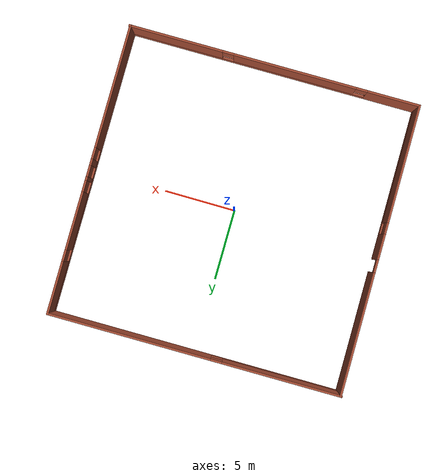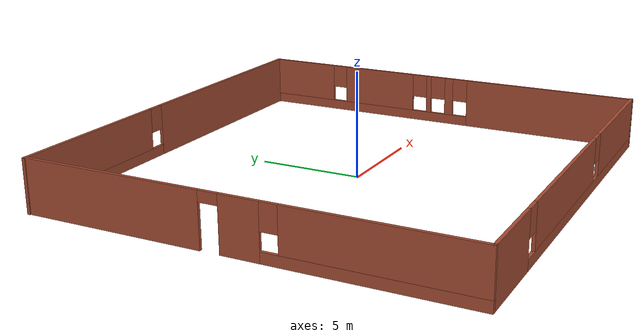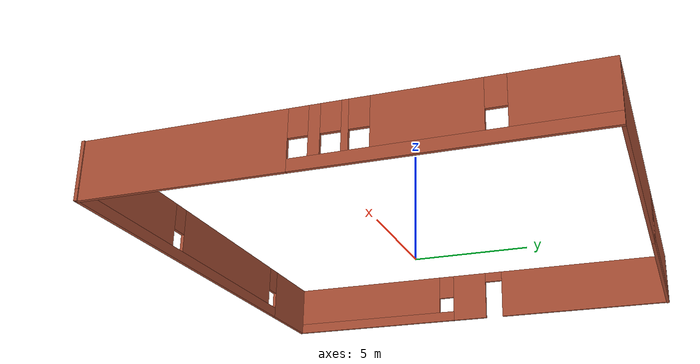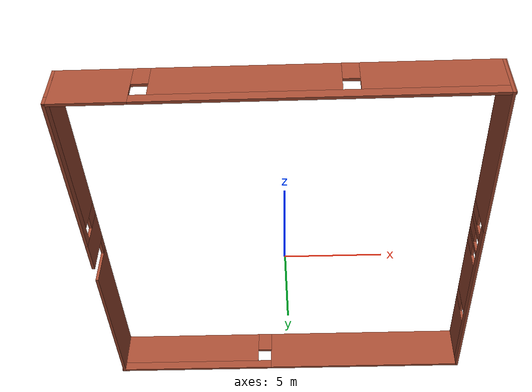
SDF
<?xml version='1.0'?>
<sdf version='1.7'>
  <model name='Walls'>
    <pose>-0.027118 0.015393 0 0 -0 0</pose>
    <link name='Wall_43'>
      <pose>-10.226 0 0 0 -0 -1.57109</pose>
      <visual name='Wall_43_Visual_0'>
        <pose>-5.91084 0 1.25 0 -0 0</pose>
        <geometry>
          <box>
            <size>8.66644 0.15 2.5</size>
          </box>
        </geometry>
        <material>
          <script>
            <uri>file://media/materials/scripts/gazebo.material</uri>
            <name>Gazebo/Bricks</name>
          </script>
          <ambient>0.388235 0.270588 0.172549 1</ambient>
        </material>
        <meta>
          <layer>0</layer>
        </meta>
      </visual>
      <collision name='Wall_43_Collision_0'>
        <geometry>
          <box>
            <size>8.66644 0.15 2.5</size>
          </box>
        </geometry>
        <pose>-5.91084 0 1.25 0 -0 0</pose>
      </collision>
      <visual name='Wall_43_Visual_1'>
        <pose>0.223322 0 1.25 0 -0 0</pose>
        <geometry>
          <box>
            <size>1.80188 0.15 2.5</size>
          </box>
        </geometry>
        <material>
          <script>
            <uri>file://media/materials/scripts/gazebo.material</uri>
            <name>Gazebo/Bricks</name>
          </script>
          <ambient>0.388235 0.270588 0.172549 1</ambient>
        </material>
        <meta>
          <layer>0</layer>
        </meta>
      </visual>
      <collision name='Wall_43_Collision_1'>
        <geometry>
          <box>
            <size>1.80188 0.15 2.5</size>
          </box>
        </geometry>
        <pose>0.223322 0 1.25 0 -0 0</pose>
      </collision>
      <visual name='Wall_43_Visual_2'>
        <pose>5.68416 0 0.25 0 -0 0</pose>
        <geometry>
          <box>
            <size>9.1198 0.15 0.5</size>
          </box>
        </geometry>
        <material>
          <script>
            <uri>file://media/materials/scripts/gazebo.material</uri>
            <name>Gazebo/Bricks</name>
          </script>
          <ambient>0.388235 0.270588 0.172549 1</ambient>
        </material>
        <meta>
          <layer>0</layer>
        </meta>
      </visual>
      <collision name='Wall_43_Collision_2'>
        <geometry>
          <box>
            <size>9.1198 0.15 0.5</size>
          </box>
        </geometry>
        <pose>5.68416 0 0.25 0 -0 0</pose>
      </collision>
      <visual name='Wall_43_Visual_3'>
        <pose>6.08416 0 1.5 0 -0 0</pose>
        <geometry>
          <box>
            <size>8.3198 0.15 2</size>
          </box>
        </geometry>
        <material>
          <script>
            <uri>file://media/materials/scripts/gazebo.material</uri>
            <name>Gazebo/Bricks</name>
          </script>
          <ambient>0.388235 0.270588 0.172549 1</ambient>
        </material>
        <meta>
          <layer>0</layer>
        </meta>
      </visual>
      <collision name='Wall_43_Collision_3'>
        <geometry>
          <box>
            <size>8.3198 0.15 2</size>
          </box>
        </geometry>
        <pose>6.08416 0 1.5 0 -0 0</pose>
      </collision>
      <visual name='Wall_43_Visual_4'>
        <pose>1.52426 0 1.9 0 -0 0</pose>
        <geometry>
          <box>
            <size>0.8 0.15 1.2</size>
          </box>
        </geometry>
        <material>
          <script>
            <uri>file://media/materials/scripts/gazebo.material</uri>
            <name>Gazebo/Bricks</name>
          </script>
          <ambient>0.388235 0.270588 0.172549 1</ambient>
        </material>
        <meta>
          <layer>0</layer>
        </meta>
      </visual>
      <collision name='Wall_43_Collision_4'>
        <geometry>
          <box>
            <size>0.8 0.15 1.2</size>
          </box>
        </geometry>
        <pose>1.52426 0 1.9 0 -0 0</pose>
      </collision>
      <visual name='Wall_43_Visual_5'>
        <pose>-1.12762 0 2.25 0 -0 0</pose>
        <geometry>
          <box>
            <size>0.9 0.15 0.5</size>
          </box>
        </geometry>
        <material>
          <script>
            <uri>file://media/materials/scripts/gazebo.material</uri>
            <name>Gazebo/Bricks</name>
          </script>
          <ambient>0.388235 0.270588 0.172549 1</ambient>
        </material>
        <meta>
          <layer>0</layer>
        </meta>
      </visual>
      <collision name='Wall_43_Collision_5'>
        <geometry>
          <box>
            <size>0.9 0.15 0.5</size>
          </box>
        </geometry>
        <pose>-1.12762 0 2.25 0 -0 0</pose>
      </collision>
    </link>
    <link name='Wall_44'>
      <pose>0.04349 -10.1688 0 0 -0 0</pose>
      <visual name='Wall_44_Visual_0'>
        <pose>-8.4495 0 1.25 0 -0 0</pose>
        <geometry>
          <box>
            <size>3.70301 0.15 2.5</size>
          </box>
        </geometry>
        <material>
          <script>
            <uri>file://media/materials/scripts/gazebo.material</uri>
            <name>Gazebo/Bricks</name>
          </script>
          <ambient>0.388235 0.270588 0.172549 1</ambient>
        </material>
        <meta>
          <layer>0</layer>
        </meta>
      </visual>
      <collision name='Wall_44_Collision_0'>
        <geometry>
          <box>
            <size>3.70301 0.15 2.5</size>
          </box>
        </geometry>
        <pose>-8.4495 0 1.25 0 -0 0</pose>
      </collision>
      <visual name='Wall_44_Visual_1'>
        <pose>1.8515 0 0.25 0 -0 0</pose>
        <geometry>
          <box>
            <size>16.899 0.15 0.5</size>
          </box>
        </geometry>
        <material>
          <script>
            <uri>file://media/materials/scripts/gazebo.material</uri>
            <name>Gazebo/Bricks</name>
          </script>
          <ambient>0.388235 0.270588 0.172549 1</ambient>
        </material>
        <meta>
          <layer>0</layer>
        </meta>
      </visual>
      <collision name='Wall_44_Collision_1'>
        <geometry>
          <box>
            <size>16.899 0.15 0.5</size>
          </box>
        </geometry>
        <pose>1.8515 0 0.25 0 -0 0</pose>
      </collision>
      <visual name='Wall_44_Visual_2'>
        <pose>-1.47582 0 1.5 0 -0 0</pose>
        <geometry>
          <box>
            <size>8.64435 0.15 2</size>
          </box>
        </geometry>
        <material>
          <script>
            <uri>file://media/materials/scripts/gazebo.material</uri>
            <name>Gazebo/Bricks</name>
          </script>
          <ambient>0.388235 0.270588 0.172549 1</ambient>
        </material>
        <meta>
          <layer>0</layer>
        </meta>
      </visual>
      <collision name='Wall_44_Collision_2'>
        <geometry>
          <box>
            <size>8.64435 0.15 2</size>
          </box>
        </geometry>
        <pose>-1.47582 0 1.5 0 -0 0</pose>
      </collision>
      <visual name='Wall_44_Visual_3'>
        <pose>6.97368 0 1.5 0 -0 0</pose>
        <geometry>
          <box>
            <size>6.65464 0.15 2</size>
          </box>
        </geometry>
        <material>
          <script>
            <uri>file://media/materials/scripts/gazebo.material</uri>
            <name>Gazebo/Bricks</name>
          </script>
          <ambient>0.388235 0.270588 0.172549 1</ambient>
        </material>
        <meta>
          <layer>0</layer>
        </meta>
      </visual>
      <collision name='Wall_44_Collision_3'>
        <geometry>
          <box>
            <size>6.65464 0.15 2</size>
          </box>
        </geometry>
        <pose>6.97368 0 1.5 0 -0 0</pose>
      </collision>
      <visual name='Wall_44_Visual_4'>
        <pose>-6.198 0 1.9 0 -0 0</pose>
        <geometry>
          <box>
            <size>0.8 0.15 1.2</size>
          </box>
        </geometry>
        <material>
          <script>
            <uri>file://media/materials/scripts/gazebo.material</uri>
            <name>Gazebo/Bricks</name>
          </script>
          <ambient>0.388235 0.270588 0.172549 1</ambient>
        </material>
        <meta>
          <layer>0</layer>
        </meta>
      </visual>
      <collision name='Wall_44_Collision_4'>
        <geometry>
          <box>
            <size>0.8 0.15 1.2</size>
          </box>
        </geometry>
        <pose>-6.198 0 1.9 0 -0 0</pose>
      </collision>
      <visual name='Wall_44_Visual_5'>
        <pose>3.24636 0 1.9 0 -0 0</pose>
        <geometry>
          <box>
            <size>0.8 0.15 1.2</size>
          </box>
        </geometry>
        <material>
          <script>
            <uri>file://media/materials/scripts/gazebo.material</uri>
            <name>Gazebo/Bricks</name>
          </script>
          <ambient>0.388235 0.270588 0.172549 1</ambient>
        </material>
        <meta>
          <layer>0</layer>
        </meta>
      </visual>
      <collision name='Wall_44_Collision_5'>
        <geometry>
          <box>
            <size>0.8 0.15 1.2</size>
          </box>
        </geometry>
        <pose>3.24636 0 1.9 0 -0 0</pose>
      </collision>
    </link>
    <link name='Wall_45'>
      <pose>10.223 0 0 0 -0 1.5708</pose>
      <visual name='Wall_45_Visual_0'>
        <pose>-5.87482 0 1.25 0 -0 0</pose>
        <geometry>
          <box>
            <size>8.73851 0.15 2.5</size>
          </box>
        </geometry>
        <material>
          <script>
            <uri>file://media/materials/scripts/gazebo.material</uri>
            <name>Gazebo/Bricks</name>
          </script>
          <ambient>0.388235 0.270588 0.172549 1</ambient>
        </material>
        <meta>
          <layer>0</layer>
        </meta>
      </visual>
      <collision name='Wall_45_Collision_0'>
        <geometry>
          <box>
            <size>8.73851 0.15 2.5</size>
          </box>
        </geometry>
        <pose>-5.87482 0 1.25 0 -0 0</pose>
      </collision>
      <visual name='Wall_45_Visual_1'>
        <pose>4.36925 0 0.25 0 -0 0</pose>
        <geometry>
          <box>
            <size>11.7496 0.15 0.5</size>
          </box>
        </geometry>
        <material>
          <script>
            <uri>file://media/materials/scripts/gazebo.material</uri>
            <name>Gazebo/Bricks</name>
          </script>
          <ambient>0.388235 0.270588 0.172549 1</ambient>
        </material>
        <meta>
          <layer>0</layer>
        </meta>
      </visual>
      <collision name='Wall_45_Collision_1'>
        <geometry>
          <box>
            <size>11.7496 0.15 0.5</size>
          </box>
        </geometry>
        <pose>4.36925 0 0.25 0 -0 0</pose>
      </collision>
      <visual name='Wall_45_Visual_2'>
        <pose>-0.477493 0 1.5 0 -0 0</pose>
        <geometry>
          <box>
            <size>0.456146 0.15 2</size>
          </box>
        </geometry>
        <material>
          <script>
            <uri>file://media/materials/scripts/gazebo.material</uri>
            <name>Gazebo/Bricks</name>
          </script>
          <ambient>0.388235 0.270588 0.172549 1</ambient>
        </material>
        <meta>
          <layer>0</layer>
        </meta>
      </visual>
      <collision name='Wall_45_Collision_2'>
        <geometry>
          <box>
            <size>0.456146 0.15 2</size>
          </box>
        </geometry>
        <pose>-0.477493 0 1.5 0 -0 0</pose>
      </collision>
      <visual name='Wall_45_Visual_3'>
        <pose>0.685605 0 1.5 0 -0 0</pose>
        <geometry>
          <box>
            <size>0.27005 0.15 2</size>
          </box>
        </geometry>
        <material>
          <script>
            <uri>file://media/materials/scripts/gazebo.material</uri>
            <name>Gazebo/Bricks</name>
          </script>
          <ambient>0.388235 0.270588 0.172549 1</ambient>
        </material>
        <meta>
          <layer>0</layer>
        </meta>
      </visual>
      <collision name='Wall_45_Collision_3'>
        <geometry>
          <box>
            <size>0.27005 0.15 2</size>
          </box>
        </geometry>
        <pose>0.685605 0 1.5 0 -0 0</pose>
      </collision>
      <visual name='Wall_45_Visual_4'>
        <pose>3.66314 0 1.5 0 -0 0</pose>
        <geometry>
          <box>
            <size>4.08501 0.15 2</size>
          </box>
        </geometry>
        <material>
          <script>
            <uri>file://media/materials/scripts/gazebo.material</uri>
            <name>Gazebo/Bricks</name>
          </script>
          <ambient>0.388235 0.270588 0.172549 1</ambient>
        </material>
        <meta>
          <layer>0</layer>
        </meta>
      </visual>
      <collision name='Wall_45_Collision_4'>
        <geometry>
          <box>
            <size>4.08501 0.15 2</size>
          </box>
        </geometry>
        <pose>3.66314 0 1.5 0 -0 0</pose>
      </collision>
      <visual name='Wall_45_Visual_5'>
        <pose>8.37486 0 1.5 0 -0 0</pose>
        <geometry>
          <box>
            <size>3.73844 0.15 2</size>
          </box>
        </geometry>
        <material>
          <script>
            <uri>file://media/materials/scripts/gazebo.material</uri>
            <name>Gazebo/Bricks</name>
          </script>
          <ambient>0.388235 0.270588 0.172549 1</ambient>
        </material>
        <meta>
          <layer>0</layer>
        </meta>
      </visual>
      <collision name='Wall_45_Collision_5'>
        <geometry>
          <box>
            <size>3.73844 0.15 2</size>
          </box>
        </geometry>
        <pose>8.37486 0 1.5 0 -0 0</pose>
      </collision>
      <visual name='Wall_45_Visual_6'>
        <pose>-1.10557 0 1.9 0 -0 0</pose>
        <geometry>
          <box>
            <size>0.8 0.15 1.2</size>
          </box>
        </geometry>
        <material>
          <script>
            <uri>file://media/materials/scripts/gazebo.material</uri>
            <name>Gazebo/Bricks</name>
          </script>
          <ambient>0.388235 0.270588 0.172549 1</ambient>
        </material>
        <meta>
          <layer>0</layer>
        </meta>
      </visual>
      <collision name='Wall_45_Collision_6'>
        <geometry>
          <box>
            <size>0.8 0.15 1.2</size>
          </box>
        </geometry>
        <pose>-1.10557 0 1.9 0 -0 0</pose>
      </collision>
      <visual name='Wall_45_Visual_7'>
        <pose>0.15058 0 1.9 0 -0 0</pose>
        <geometry>
          <box>
            <size>0.8 0.15 1.2</size>
          </box>
        </geometry>
        <material>
          <script>
            <uri>file://media/materials/scripts/gazebo.material</uri>
            <name>Gazebo/Bricks</name>
          </script>
          <ambient>0.388235 0.270588 0.172549 1</ambient>
        </material>
        <meta>
          <layer>0</layer>
        </meta>
      </visual>
      <collision name='Wall_45_Collision_7'>
        <geometry>
          <box>
            <size>0.8 0.15 1.2</size>
          </box>
        </geometry>
        <pose>0.15058 0 1.9 0 -0 0</pose>
      </collision>
      <visual name='Wall_45_Visual_8'>
        <pose>1.22063 0 1.9 0 -0 0</pose>
        <geometry>
          <box>
            <size>0.8 0.15 1.2</size>
          </box>
        </geometry>
        <material>
          <script>
            <uri>file://media/materials/scripts/gazebo.material</uri>
            <name>Gazebo/Bricks</name>
          </script>
          <ambient>0.388235 0.270588 0.172549 1</ambient>
        </material>
        <meta>
          <layer>0</layer>
        </meta>
      </visual>
      <collision name='Wall_45_Collision_8'>
        <geometry>
          <box>
            <size>0.8 0.15 1.2</size>
          </box>
        </geometry>
        <pose>1.22063 0 1.9 0 -0 0</pose>
      </collision>
      <visual name='Wall_45_Visual_9'>
        <pose>6.10564 0 1.9 0 -0 0</pose>
        <geometry>
          <box>
            <size>0.8 0.15 1.2</size>
          </box>
        </geometry>
        <material>
          <script>
            <uri>file://media/materials/scripts/gazebo.material</uri>
            <name>Gazebo/Bricks</name>
          </script>
          <ambient>0.388235 0.270588 0.172549 1</ambient>
        </material>
        <meta>
          <layer>0</layer>
        </meta>
      </visual>
      <collision name='Wall_45_Collision_9'>
        <geometry>
          <box>
            <size>0.8 0.15 1.2</size>
          </box>
        </geometry>
        <pose>6.10564 0 1.9 0 -0 0</pose>
      </collision>
    </link>
    <link name='Wall_46'>
      <pose>-0.046523 10.1688 0 0 -0 3.14159</pose>
      <visual name='Wall_46_Visual_0'>
        <pose>-4.59793 0 1.25 0 -0 0</pose>
        <geometry>
          <box>
            <size>11.4001 0.15 2.5</size>
          </box>
        </geometry>
        <material>
          <script>
            <uri>file://media/materials/scripts/gazebo.material</uri>
            <name>Gazebo/Bricks</name>
          </script>
          <ambient>0.388235 0.270588 0.172549 1</ambient>
        </material>
        <meta>
          <layer>0</layer>
        </meta>
      </visual>
      <collision name='Wall_46_Collision_0'>
        <geometry>
          <box>
            <size>11.4001 0.15 2.5</size>
          </box>
        </geometry>
        <pose>-4.59793 0 1.25 0 -0 0</pose>
      </collision>
      <visual name='Wall_46_Visual_1'>
        <pose>5.70004 0 0.25 0 -0 0</pose>
        <geometry>
          <box>
            <size>9.19585 0.15 0.5</size>
          </box>
        </geometry>
        <material>
          <script>
            <uri>file://media/materials/scripts/gazebo.material</uri>
            <name>Gazebo/Bricks</name>
          </script>
          <ambient>0.388235 0.270588 0.172549 1</ambient>
        </material>
        <meta>
          <layer>0</layer>
        </meta>
      </visual>
      <collision name='Wall_46_Collision_1'>
        <geometry>
          <box>
            <size>9.19585 0.15 0.5</size>
          </box>
        </geometry>
        <pose>5.70004 0 0.25 0 -0 0</pose>
      </collision>
      <visual name='Wall_46_Visual_2'>
        <pose>6.10004 0 1.5 0 -0 0</pose>
        <geometry>
          <box>
            <size>8.39585 0.15 2</size>
          </box>
        </geometry>
        <material>
          <script>
            <uri>file://media/materials/scripts/gazebo.material</uri>
            <name>Gazebo/Bricks</name>
          </script>
          <ambient>0.388235 0.270588 0.172549 1</ambient>
        </material>
        <meta>
          <layer>0</layer>
        </meta>
      </visual>
      <collision name='Wall_46_Collision_2'>
        <geometry>
          <box>
            <size>8.39585 0.15 2</size>
          </box>
        </geometry>
        <pose>6.10004 0 1.5 0 -0 0</pose>
      </collision>
      <visual name='Wall_46_Visual_3'>
        <pose>1.50211 0 1.9 0 -0 0</pose>
        <geometry>
          <box>
            <size>0.8 0.15 1.2</size>
          </box>
        </geometry>
        <material>
          <script>
            <uri>file://media/materials/scripts/gazebo.material</uri>
            <name>Gazebo/Bricks</name>
          </script>
          <ambient>0.388235 0.270588 0.172549 1</ambient>
        </material>
        <meta>
          <layer>0</layer>
        </meta>
      </visual>
      <collision name='Wall_46_Collision_3'>
        <geometry>
          <box>
            <size>0.8 0.15 1.2</size>
          </box>
        </geometry>
        <pose>1.50211 0 1.9 0 -0 0</pose>
      </collision>
    </link>
    <static>1</static>
  </model>
</sdf>
